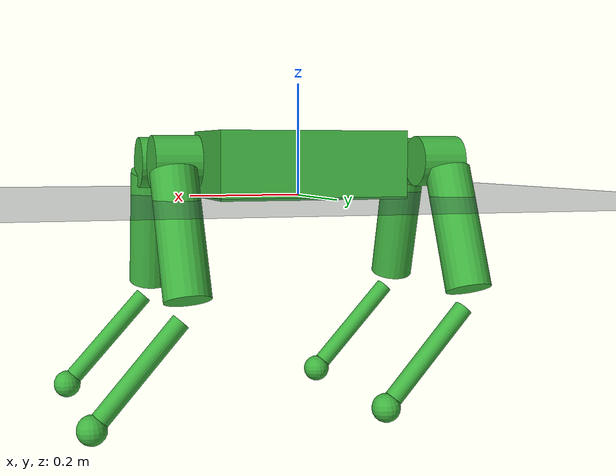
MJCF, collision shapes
<?xml version='1.0' encoding='utf-8'?>
<mujoco model="TOTAL ASSY_4차_URDF_sample">
  <option timestep="0.005" gravity="0 0 -9.81" integrator="implicitfast" cone="elliptic" iterations="50" />
  <compiler angle="radian" meshdir="../meshes/" />
  <visual>
    <headlight ambient="0.4 0.4 0.4" diffuse="0.8 0.8 0.8" specular="0.1 0.1 0.1" />
    <rgba haze="0.15 0.25 0.35 1" />
    <global azimuth="120" elevation="-20" />
  </visual>
  <asset>
    <texture type="skybox" builtin="gradient" rgb1="0.3 0.5 0.7" rgb2="0 0 0" width="512" height="512" />
    <texture name="grid_tex" type="2d" builtin="checker" width="512" height="512" rgb1="0.18 0.22 0.28" rgb2="0.28 0.34 0.42" mark="cross" markrgb="0.75 0.80 0.85" />
    <material name="grid_mat" texture="grid_tex" texrepeat="2 2" texuniform="true" reflectance="0.15" />
    <mesh name="base_link" content_type="model/stl" file="base_link.STL" />
    <mesh name="FL_hip_roll" content_type="model/stl" file="FL_hip_roll.STL" />
    <mesh name="FL_hip_pitch" content_type="model/stl" file="FL_hip_pitch.STL" />
    <mesh name="FL_knee_pitch" content_type="model/stl" file="FL_knee_pitch.STL" />
    <mesh name="FL_foot" content_type="model/stl" file="FL_foot.STL" />
    <mesh name="FR_hip_roll" content_type="model/stl" file="FR_hip_roll.STL" />
    <mesh name="FR_hip_pitch" content_type="model/stl" file="FR_hip_pitch.STL" />
    <mesh name="FR_knee_pitch" content_type="model/stl" file="FR_knee_pitch.STL" />
    <mesh name="FR_foot" content_type="model/stl" file="FR_foot.STL" />
    <mesh name="RL_hip_roll" content_type="model/stl" file="RL_hip_roll.STL" />
    <mesh name="RL_hip_pitch" content_type="model/stl" file="RL_hip_pitch.STL" />
    <mesh name="RL_knee_pitch" content_type="model/stl" file="RL_knee_pitch.STL" />
    <mesh name="RL_foot" content_type="model/stl" file="RL_foot.STL" />
    <mesh name="RR_hip_roll" content_type="model/stl" file="RR_hip_roll.STL" />
    <mesh name="RR_hip_pitch" content_type="model/stl" file="RR_hip_pitch.STL" />
    <mesh name="RR_knee_pitch" content_type="model/stl" file="RR_knee_pitch.STL" />
    <mesh name="RR_foot" content_type="model/stl" file="RR_foot.STL" />
  </asset>
  <worldbody>
    <light directional="true" diffuse="0.7 0.7 0.7" specular="0.2 0.2 0.2" pos="0 0 5.0" dir="0 0 -1" castshadow="false" />
    <geom name="ground" type="plane" size="0 0 0.05" material="grid_mat" friction="1 0.005 0.0001" condim="3" contype="2" conaffinity="1" />
    <body name="base">
      <freejoint name="base_free_joint" />
      <body name="base_link">
        <inertial pos="0 -0.000744 0.044013" quat="-0.00596919 0.707082 -0.00596919 0.707082" mass="6.5031" diaginertia="0.115128 0.0895957 0.037055" />
        <geom pos="0 0 0" quat="0.707141 0.707073 0 0" type="mesh" contype="0" conaffinity="0" group="1" density="0" rgba="0.69804 0.69804 0.69804 1" mesh="base_link" />
        <geom size="0.17 0.1 0.06" pos="0 0 0.055" type="box" rgba="0.25 0.7 0.25 0" contype="1" conaffinity="0" friction="1 0.005 0.0001" condim="3" group="3" />
        <body name="FL_hip_roll" pos="0.172 0.0689759 0.0611744" quat="0.500023 0.499975 0.500025 0.499977">
          <inertial pos="-0.005209 0.00015 0.072744" quat="0.999436 -0.0297755 -0.0130204 0.00846893" mass="1.75515" diaginertia="0.00325722 0.00206299 0.00196079" />
          <joint name="FL_hip_roll" pos="0 0 0" axis="0 0 -1" range="-0.436332 0.523599" actuatorfrcrange="-60 60" armature="0.0043" damping="0.003" frictionloss="0.27" />
          <geom type="mesh" contype="0" conaffinity="0" group="1" density="0" rgba="0.69804 0.69804 0.69804 1" mesh="FL_hip_roll" />
          <geom size="0.045 0.04" pos="-0.005 0 0.069" type="cylinder" rgba="0.25 0.7 0.25 0" contype="1" conaffinity="0" friction="1 0.005 0.0001" condim="3" group="3" />
          <body name="FL_hip_pitch" pos="0.019997 0.00033987 0.078" quat="0.682815 -0.172518 -0.68865 0.172517">
            <inertial pos="-0.015335 -0.018304 -0.046927" quat="0.550213 0.316538 -0.706246 0.313507" mass="2.7161" diaginertia="0.0118783 0.0108426 0.0036861" />
            <joint name="FL_hip_pitch" pos="0 0 0" axis="0 0.0169003 0.999857" range="-2.0944 1.39626" actuatorfrcrange="-120 120" armature="0.01" damping="0.005" frictionloss="0.53" />
            <geom pos="0 0 0" quat="4.63268e-05 1 0 0" type="mesh" contype="0" conaffinity="0" group="1" density="0" rgba="0.69804 0.69804 0.69804 1" mesh="FL_hip_pitch" />
            <geom size="0.04 0.11" pos="-0.06 -0.1032 -0.0437" quat="0.572653 0.708717 -0.412054 1.42419e-05" type="cylinder" rgba="0.25 0.7 0.25 0" contype="1" conaffinity="0" friction="1 0.005 0.0001" condim="3" group="3" />
            <body name="FL_knee_pitch" pos="-0.12 -0.206398 -0.0875009" quat="4.451e-05 0.960784 -0.277259 -0.00469927">
              <inertial pos="0.0952134 0.0891808 0.00151548" quat="-0.238292 0.665754 0.226923 0.669698" mass="0.427686" diaginertia="0.00208687 0.00205232 7.13967e-05" />
              <joint name="FL_knee_pitch" pos="0 0 0" axis="0 0.0169929 -0.999856" range="0 1.74533" actuatorfrcrange="-120 120" armature="0.01" damping="0.005" frictionloss="0.53" />
              <geom type="mesh" contype="0" conaffinity="0" group="1" density="0" rgba="0.698039 0.698039 0.698039 1" mesh="FL_knee_pitch" />
              <geom size="0.016 0.1" pos="0.0849 0.0848 0.0014" quat="0.711343 -0.496938 0.497035 -1.6573e-05" type="cylinder" rgba="0.25 0.7 0.25 0" contype="1" conaffinity="0" friction="1 0.005 0.0001" condim="3" group="3" />
              <body name="FL_foot" pos="0.16971 0.16968 0.0028839" quat="0.707105 0.707108 0 0">
                <inertial pos="0.0020513 7.4563e-05 -0.0043872" quat="0.59329 0.384719 0.374586 0.599737" mass="0.056509" diaginertia="1.35353e-05 1.30704e-05 8.94975e-06" />
                <geom type="mesh" contype="0" conaffinity="0" group="1" density="0" rgba="0 0 0 1" mesh="FL_foot" />
                <geom size="0.025" rgba="0.25 0.7 0.25 0" contype="1" conaffinity="0" friction="1 0.005 0.0001" condim="3" group="3" />
              </body>
            </body>
          </body>
        </body>
        <body name="FR_hip_roll" pos="0.172 -0.0710033 0.0588088" quat="0.500023 0.499975 0.500025 0.499977">
          <inertial pos="0.005615 -0.000234 0.072886" quat="0.999912 -0.00907463 0.0091427 -0.00314171" mass="1.75515" diaginertia="0.00327849 0.00208799 0.00196052" />
          <joint name="FR_hip_roll" pos="0 0 0" axis="0 0 -1" range="-0.523599 0.436332" actuatorfrcrange="-60 60" armature="0.0043" damping="0.003" frictionloss="0.27" />
          <geom type="mesh" contype="0" conaffinity="0" group="1" density="0" rgba="0.69804 0.69804 0.69804 1" mesh="FR_hip_roll" />
          <geom size="0.045 0.04" pos="0.005 0 0.069" type="cylinder" rgba="0.25 0.7 0.25 0" contype="1" conaffinity="0" friction="1 0.005 0.0001" condim="3" group="3" />
          <body name="FR_hip_pitch" pos="-0.019497 -0.00033137 0.078" quat="0.682815 -0.172518 -0.68865 0.172517">
            <inertial pos="-0.015219 -0.019489 0.046528" quat="0.69451 0.310199 -0.559929 0.328498" mass="2.7162" diaginertia="0.0119464 0.010929 0.00367961" />
            <joint name="FR_hip_pitch" pos="0 0 0" axis="0 -0.0169003 -0.999857" range="-1.39626 2.0944" actuatorfrcrange="-120 120" armature="0.01" damping="0.005" frictionloss="0.53" />
            <geom pos="0 0 0" quat="4.63268e-05 1 0 0" type="mesh" contype="0" conaffinity="0" group="1" density="0" rgba="0.69804 0.69804 0.69804 1" mesh="FR_hip_pitch" />
            <geom size="0.04 0.11" pos="-0.06 -0.1046 0.0405" quat="0.811855 0.506487 -0.290451 -1.23999e-05" type="cylinder" rgba="0.25 0.7 0.25 0" contype="1" conaffinity="0" friction="1 0.005 0.0001" condim="3" group="3" />
            <body name="FR_knee_pitch" pos="-0.12 -0.209242 0.0809754" quat="4.46461e-05 0.963721 -0.266872 -0.00452323">
              <inertial pos="0.095213 0.089181 0.0015155" quat="-0.238293 0.665752 0.226929 0.669697" mass="0.42769" diaginertia="0.00208683 0.00205229 7.13789e-05" />
              <joint name="FR_knee_pitch" pos="0 0 0" axis="0 -0.0169929 0.999856" range="-1.74533 0" actuatorfrcrange="-120 120" armature="0.01" damping="0.005" frictionloss="0.53" />
              <geom type="mesh" contype="0" conaffinity="0" group="1" density="0" rgba="0.69804 0.69804 0.69804 1" mesh="FR_knee_pitch" />
              <geom size="0.016 0.1" pos="0.0849 0.0848 0.0014" quat="0.711343 -0.496938 0.497035 -1.6573e-05" type="cylinder" rgba="0.25 0.7 0.25 0" contype="1" conaffinity="0" friction="1 0.005 0.0001" condim="3" group="3" />
              <body name="FR_foot" pos="0.16971 0.16968 0.0028839" quat="0.707105 0.707108 0 0">
                <inertial pos="0.0020513 7.4563e-05 -0.0043872" quat="0.59329 0.384719 0.374586 0.599737" mass="0.056509" diaginertia="1.35353e-05 1.30704e-05 8.94975e-06" />
                <geom type="mesh" contype="0" conaffinity="0" group="1" density="0" rgba="0 0 0 1" mesh="FR_foot" />
                <geom size="0.025" rgba="0.25 0.7 0.25 0" contype="1" conaffinity="0" friction="1 0.005 0.0001" condim="3" group="3" />
              </body>
            </body>
          </body>
        </body>
        <body name="RL_hip_roll" pos="-0.172 0.0689759 0.0611744" quat="0.500023 0.499975 0.500025 0.499977">
          <inertial pos="-0.005616 0.000277 -0.072899" quat="0.999779 0.0124041 0.0148799 0.00815703" mass="1.75515" diaginertia="0.00327849 0.00209075 0.00195476" />
          <joint name="RL_hip_roll" pos="0 0 0" axis="0 0 1" range="-0.523599 0.436332" actuatorfrcrange="-60 60" armature="0.0043" damping="0.003" frictionloss="0.27" />
          <geom type="mesh" contype="0" conaffinity="0" group="1" density="0" rgba="0.69804 0.69804 0.69804 1" mesh="RL_hip_roll" />
          <geom size="0.045 0.04" pos="-0.005 0 -0.069" type="cylinder" rgba="0.25 0.7 0.25 0" contype="1" conaffinity="0" friction="1 0.005 0.0001" condim="3" group="3" />
          <body name="RL_hip_pitch" pos="0.019497 0.00033137 -0.078" quat="0.682815 -0.172518 -0.68865 0.172517">
            <inertial pos="-0.015335 -0.018301 -0.047165" quat="0.548874 0.315748 -0.707508 0.313805" mass="2.7161" diaginertia="0.0118865 0.0108716 0.00370794" />
            <joint name="RL_hip_pitch" pos="0 0 0" axis="0 0.0169003 0.999857" range="-2.0944 1.39626" actuatorfrcrange="-120 120" armature="0.01" damping="0.005" frictionloss="0.53" />
            <geom pos="0 0 0" quat="4.63268e-05 1 0 0" type="mesh" contype="0" conaffinity="0" group="1" density="0" rgba="0.69804 0.69804 0.69804 1" mesh="RL_hip_pitch" />
            <geom size="0.04 0.11" pos="-0.06 -0.1032 -0.044" quat="0.571912 0.709159 -0.412323 -2.0519e-05" type="cylinder" rgba="0.25 0.7 0.25 0" contype="1" conaffinity="0" friction="1 0.005 0.0001" condim="3" group="3" />
            <body name="RL_knee_pitch" pos="-0.12 -0.206388 -0.0880009" quat="4.451e-05 0.960784 -0.277259 -0.00469927">
              <inertial pos="0.095213 0.089181 0.0015155" quat="-0.238293 0.665752 0.226929 0.669697" mass="0.42769" diaginertia="0.00208683 0.00205229 7.13789e-05" />
              <joint name="RL_knee_pitch" pos="0 0 0" axis="0 0.0169929 -0.999856" range="0 1.74533" actuatorfrcrange="-120 120" armature="0.01" damping="0.005" frictionloss="0.53" />
              <geom type="mesh" contype="0" conaffinity="0" group="1" density="0" rgba="0.69804 0.69804 0.69804 1" mesh="RL_knee_pitch" />
              <geom size="0.016 0.1" pos="0.0849 0.0848 0.0014" quat="0.711343 -0.496938 0.497035 -1.6573e-05" type="cylinder" rgba="0.25 0.7 0.25 0" contype="1" conaffinity="0" friction="1 0.005 0.0001" condim="3" group="3" />
              <body name="RL_foot" pos="0.16971 0.16968 0.0028839" quat="0.707105 0.707108 0 0">
                <inertial pos="0.0020513 7.4563e-05 -0.0043872" quat="0.59329 0.384719 0.374586 0.599737" mass="0.056509" diaginertia="1.35353e-05 1.30704e-05 8.94975e-06" />
                <geom type="mesh" contype="0" conaffinity="0" group="1" density="0" rgba="0 0 0 1" mesh="RL_foot" />
                <geom size="0.025" rgba="0.25 0.7 0.25 0" contype="1" conaffinity="0" friction="1 0.005 0.0001" condim="3" group="3" />
              </body>
            </body>
          </body>
        </body>
        <body name="RR_hip_roll" pos="-0.172 -0.0710033 0.0588088" quat="0.500023 0.499975 0.500025 0.499977">
          <inertial pos="0.005617 -0.000298 -0.072744" quat="0.999775 0.00601922 -0.0200507 -0.00336348" mass="1.75515" diaginertia="0.00325814 0.00206396 0.0019609" />
          <joint name="RR_hip_roll" pos="0 0 0" axis="0 0 1" range="-0.436332 0.523599" actuatorfrcrange="-60 60" armature="0.0043" damping="0.003" frictionloss="0.27" />
          <geom type="mesh" contype="0" conaffinity="0" group="1" density="0" rgba="0.69804 0.69804 0.69804 1" mesh="RR_hip_roll" />
          <geom size="0.045 0.04" pos="0.005 0 -0.069" type="cylinder" rgba="0.25 0.7 0.25 0" contype="1" conaffinity="0" friction="1 0.005 0.0001" condim="3" group="3" />
          <body name="RR_hip_pitch" pos="-0.019497 -0.00033137 -0.078" quat="0.682815 -0.172518 -0.68865 0.172517">
            <inertial pos="-0.015219 -0.019489 0.046528" quat="0.696731 0.315795 -0.558091 0.321518" mass="2.7162" diaginertia="0.01194 0.0109262 0.00368877" />
            <joint name="RR_hip_pitch" pos="0 0 0" axis="0 -0.0169003 -0.999857" range="-1.39626 2.0944" actuatorfrcrange="-120 120" armature="0.01" damping="0.005" frictionloss="0.53" />
            <geom pos="0 0 0" quat="4.63268e-05 1 0 0" type="mesh" contype="0" conaffinity="0" group="1" density="0" rgba="0.69804 0.69804 0.69804 1" mesh="RR_hip_pitch" />
            <geom size="0.04 0.11" pos="-0.06 -0.1046 0.0405" quat="0.811855 0.506487 -0.290451 -1.23999e-05" type="cylinder" rgba="0.25 0.7 0.25 0" contype="1" conaffinity="0" friction="1 0.005 0.0001" condim="3" group="3" />
            <body name="RR_knee_pitch" pos="-0.12 -0.209242 0.0809754" quat="4.4646e-05 0.963721 -0.266872 -0.00452323">
              <inertial pos="0.095213 0.089181 0.0015155" quat="-0.238293 0.665752 0.226929 0.669697" mass="0.42769" diaginertia="0.00208683 0.00205229 7.13789e-05" />
              <joint name="RR_knee_pitch" pos="0 0 0" axis="0 -0.0169929 0.999856" range="-1.74533 0" actuatorfrcrange="-120 120" armature="0.01" damping="0.005" frictionloss="0.53" />
              <geom type="mesh" contype="0" conaffinity="0" group="1" density="0" rgba="0.69804 0.69804 0.69804 1" mesh="RR_knee_pitch" />
              <geom size="0.016 0.1" pos="0.0849 0.0848 0.0014" quat="0.711343 -0.496938 0.497035 -1.6573e-05" type="cylinder" rgba="0.25 0.7 0.25 0" contype="1" conaffinity="0" friction="1 0.005 0.0001" condim="3" group="3" />
              <body name="RR_foot" pos="0.16971 0.16968 0.0028839" quat="0.707105 0.707108 0 0">
                <inertial pos="0.0020513 7.4563e-05 -0.0043872" quat="0.59329 0.384719 0.374586 0.599737" mass="0.056509" diaginertia="1.35353e-05 1.30704e-05 8.94975e-06" />
                <geom type="mesh" contype="0" conaffinity="0" group="1" density="0" rgba="0 0 0 1" mesh="RR_foot" />
                <geom size="0.025" rgba="0.25 0.7 0.25 0" contype="1" conaffinity="0" friction="1 0.005 0.0001" condim="3" group="3" />
              </body>
            </body>
          </body>
        </body>
        <camera name="tracking" mode="trackcom" pos="0 -2 0.7" xyaxes="1 0 0 0 0.33 0.94" />
        <camera name="base_chase" mode="fixed" pos="-1.8 0 0.5" xyaxes="0 -1 0 0.259 0 0.966" />
        <camera name="base_side" mode="fixed" pos="0 -1.8 0.4" xyaxes="1 0 0 0 0.259 0.966" />
      </body>
    </body>
  </worldbody>
  <visual>
    <headlight diffuse="0.6 0.6 0.6" ambient="0.3 0.3 0.3" />
  </visual>
</mujoco>
